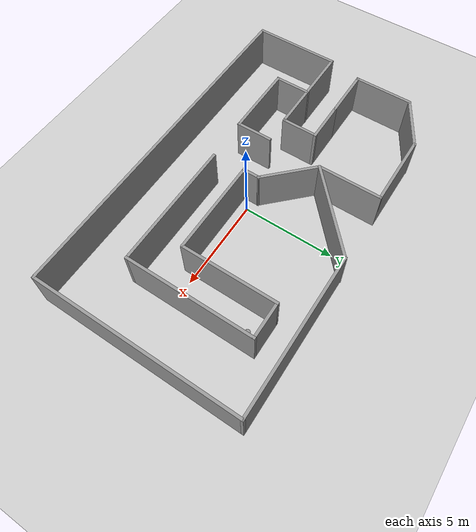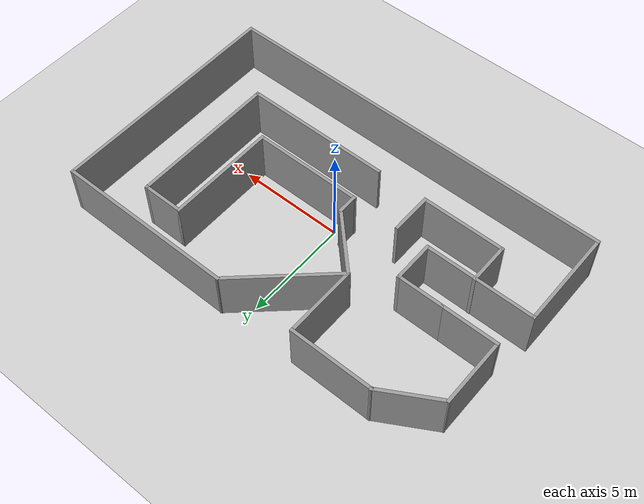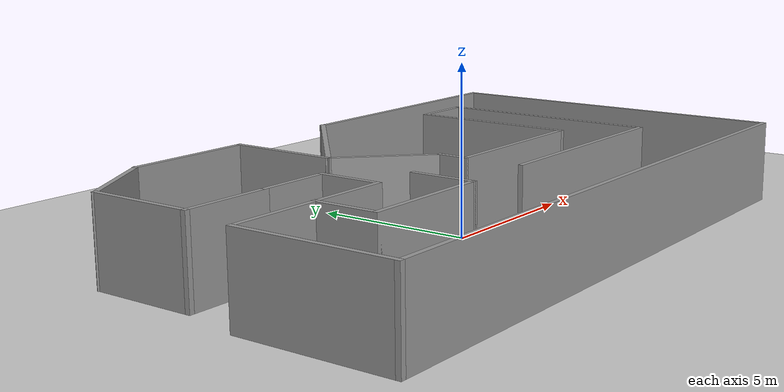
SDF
<sdf version="1.6">
 <world name="default">
  <light name="sun" type="directional">
   <pose>0 0 10 0 -0 0</pose>
   <diffuse>0.8 0.8 0.8 1</diffuse>
   <specular>0.2 0.2 0.2 1</specular>
   <attenuation>
    <range>1000</range>
    <constant>0.9</constant>
    <linear>0.01</linear>
    <quadratic>0.001</quadratic>
   </attenuation>
   <direction>-0.5 0.1 -0.9</direction>
  </light>
  <model name="ground_plane">
   <static>1</static>
   <link name="link">
    <collision name="collision">
     <geometry><plane><normal>0 0 1</normal><size>100 100</size></plane></geometry>
     <surface>
      <contact><collide_bitmask>65535</collide_bitmask></contact>
      <friction><ode><mu>100</mu><mu2>50</mu2></ode></friction>
     </surface>
    </collision>
    <visual name="visual">
     <cast_shadows>0</cast_shadows>
     <geometry><plane><normal>0 0 1</normal><size>100 100</size></plane></geometry>
     <material>
      <script><uri>file://media/materials/scripts/gazebo.material</uri><name>Gazebo/Grey</name></script>
     </material>
    </visual>
   </link>
  </model>
  <gravity>0 0 -9.8</gravity>
  <magnetic_field>6e-06 2.3e-05 -4.2e-05</magnetic_field>
  <atmosphere type="adiabatic"/>
  <physics name="default_physics" default="0" type="ode">
   <max_step_size>0.001</max_step_size>
   <real_time_factor>1</real_time_factor>
   <real_time_update_rate>1000</real_time_update_rate>
  </physics>
  <scene><ambient>0.4 0.4 0.4 1</ambient><background>0.7 0.7 0.7 1</background><shadows>1</shadows></scene>
  <audio><device>default</device></audio>
  <spherical_coordinates>
   <surface_model>EARTH_WGS84</surface_model>
   <latitude_deg>0</latitude_deg>
   <longitude_deg>0</longitude_deg>
   <elevation>0</elevation>
   <heading_deg>0</heading_deg>
  </spherical_coordinates>
  <model name="indoor_3">
   <pose>-0.079101 0.448428 0 0 -0 0</pose>
   <link name="Wall_0">
    <collision name="Wall_0_Collision">
     <geometry><box><size>19 0.15 2.5</size></box></geometry>
     <pose>0 0 1.25 0 -0 0</pose>
    </collision>
    <visual name="Wall_0_Visual">
     <pose>0 0 1.25 0 -0 0</pose>
     <geometry><box><size>19 0.15 2.5</size></box></geometry>
     <material>
      <script><uri>file://media/materials/scripts/gazebo.material</uri><name>Gazebo/Grey</name></script>
      <ambient>1 1 1 1</ambient>
     </material>
     <meta><layer>0</layer></meta>
    </visual>
    <pose>0 -5.56549 0 0 -0 0</pose>
   </link>
   <link name="Wall_1">
    <collision name="Wall_1_Collision">
     <geometry><box><size>11.25 0.15 2.5</size></box></geometry>
     <pose>0 0 1.25 0 -0 0</pose>
    </collision>
    <visual name="Wall_1_Visual">
     <pose>0 0 1.25 0 -0 0</pose>
     <geometry><box><size>11.25 0.15 2.5</size></box></geometry>
     <material>
      <script><uri>file://media/materials/scripts/gazebo.material</uri><name>Gazebo/Grey</name></script>
      <ambient>1 1 1 1</ambient>
     </material>
     <meta><layer>0</layer></meta>
    </visual>
    <pose>9.425 -0.015486 0 0 -0 1.5708</pose>
   </link>
   <link name="Wall_10">
    <collision name="Wall_10_Collision">
     <geometry><box><size>2.75 0.15 2.5</size></box></geometry>
     <pose>0 0 1.25 0 -0 0</pose>
    </collision>
    <visual name="Wall_10_Visual">
     <pose>0 0 1.25 0 -0 0</pose>
     <geometry><box><size>2.75 0.15 2.5</size></box></geometry>
     <material>
      <script><uri>file://media/materials/scripts/gazebo.material</uri><name>Gazebo/Grey</name></script>
      <ambient>1 1 1 1</ambient>
     </material>
     <meta><layer>0</layer></meta>
    </visual>
    <pose>-7.725 0.884514 0 0 -0 3.14159</pose>
   </link>
   <link name="Wall_11">
    <collision name="Wall_11_Collision">
     <geometry><box><size>3.25 0.15 2.5</size></box></geometry>
     <pose>0 0 1.25 0 -0 0</pose>
    </collision>
    <visual name="Wall_11_Visual">
     <pose>0 0 1.25 0 -0 0</pose>
     <geometry><box><size>3.25 0.15 2.5</size></box></geometry>
     <material>
      <script><uri>file://media/materials/scripts/gazebo.material</uri><name>Gazebo/Grey</name></script>
      <ambient>1 1 1 1</ambient>
     </material>
     <meta><layer>0</layer></meta>
    </visual>
    <pose>-9.025 2.43451 0 0 -0 1.5708</pose>
   </link>
   <link name="Wall_12">
    <collision name="Wall_12_Collision">
     <geometry><box><size>3 0.15 2.5</size></box></geometry>
     <pose>0 0 1.25 0 -0 0</pose>
    </collision>
    <visual name="Wall_12_Visual">
     <pose>0 0 1.25 0 -0 0</pose>
     <geometry><box><size>3 0.15 2.5</size></box></geometry>
     <material>
      <script><uri>file://media/materials/scripts/gazebo.material</uri><name>Gazebo/Grey</name></script>
      <ambient>1 1 1 1</ambient>
     </material>
     <meta><layer>0</layer></meta>
    </visual>
    <pose>-7.79091 4.69701 0 0 -0 0.523599</pose>
   </link>
   <link name="Wall_13">
    <collision name="Wall_13_Collision">
     <geometry><box><size>4 0.15 2.5</size></box></geometry>
     <pose>0 0 1.25 0 -0 0</pose>
    </collision>
    <visual name="Wall_13_Visual">
     <pose>0 0 1.25 0 -0 0</pose>
     <geometry><box><size>4 0.15 2.5</size></box></geometry>
     <material>
      <script><uri>file://media/materials/scripts/gazebo.material</uri><name>Gazebo/Grey</name></script>
      <ambient>1 1 1 1</ambient>
     </material>
     <meta><layer>0</layer></meta>
    </visual>
    <pose>-4.63183 5.40951 0 0 -0 0</pose>
   </link>
   <link name="Wall_14">
    <collision name="Wall_14_Collision">
     <geometry><box><size>3.5 0.15 2.5</size></box></geometry>
     <pose>0 0 1.25 0 -0 0</pose>
    </collision>
    <visual name="Wall_14_Visual">
     <pose>0 0 1.25 0 -0 0</pose>
     <geometry><box><size>3.5 0.15 2.5</size></box></geometry>
     <material>
      <script><uri>file://media/materials/scripts/gazebo.material</uri><name>Gazebo/Grey</name></script>
      <ambient>1 1 1 1</ambient>
     </material>
     <meta><layer>0</layer></meta>
    </visual>
    <pose>-2.70683 3.73451 0 0 -0 -1.5708</pose>
   </link>
   <link name="Wall_15">
    <collision name="Wall_15_Collision">
     <geometry><box><size>3.25 0.15 2.5</size></box></geometry>
     <pose>0 0 1.25 0 -0 0</pose>
    </collision>
    <visual name="Wall_15_Visual">
     <pose>0 0 1.25 0 -0 0</pose>
     <geometry><box><size>3.25 0.15 2.5</size></box></geometry>
     <material>
      <script><uri>file://media/materials/scripts/gazebo.material</uri><name>Gazebo/Grey</name></script>
      <ambient>1 1 1 1</ambient>
     </material>
     <meta><layer>0</layer></meta>
    </visual>
    <pose>-1.61081 0.963499 0 0 -0 -0.785398</pose>
   </link>
   <link name="Wall_16">
    <collision name="Wall_16_Collision">
     <geometry><box><size>1 0.15 2.5</size></box></geometry>
     <pose>0 0 1.25 0 -0 0</pose>
    </collision>
    <visual name="Wall_16_Visual">
     <pose>0 0 1.25 0 -0 0</pose>
     <geometry><box><size>1 0.15 2.5</size></box></geometry>
     <material>
      <script><uri>file://media/materials/scripts/gazebo.material</uri><name>Gazebo/Grey</name></script>
      <ambient>1 1 1 1</ambient>
     </material>
     <meta><layer>0</layer></meta>
    </visual>
    <pose>-0.514796 -0.557517 0 0 -0 -1.5708</pose>
   </link>
   <link name="Wall_17">
    <collision name="Wall_17_Collision">
     <geometry><box><size>5.25 0.15 2.5</size></box></geometry>
     <pose>0 0 1.25 0 -0 0</pose>
    </collision>
    <visual name="Wall_17_Visual">
     <pose>0 0 1.25 0 -0 0</pose>
     <geometry><box><size>5.25 0.15 2.5</size></box></geometry>
     <material>
      <script><uri>file://media/materials/scripts/gazebo.material</uri><name>Gazebo/Grey</name></script>
      <ambient>1 1 1 1</ambient>
     </material>
     <meta><layer>0</layer></meta>
    </visual>
    <pose>2.0352 -0.982517 0 0 -0 0</pose>
   </link>
   <link name="Wall_18">
    <collision name="Wall_18_Collision">
     <geometry><box><size>5.25 0.15 2.5</size></box></geometry>
     <pose>0 0 1.25 0 -0 0</pose>
    </collision>
    <visual name="Wall_18_Visual">
     <pose>0 0 1.25 0 -0 0</pose>
     <geometry><box><size>5.25 0.15 2.5</size></box></geometry>
     <material>
      <script><uri>file://media/materials/scripts/gazebo.material</uri><name>Gazebo/Grey</name></script>
      <ambient>1 1 1 1</ambient>
     </material>
     <meta><layer>0</layer></meta>
    </visual>
    <pose>4.5852 1.56748 0 0 -0 1.5708</pose>
   </link>
   <link name="Wall_20">
    <collision name="Wall_20_Collision">
     <geometry><box><size>8.5 0.15 2.5</size></box></geometry>
     <pose>0 0 1.25 0 -0 0</pose>
    </collision>
    <visual name="Wall_20_Visual">
     <pose>0 0 1.25 0 -0 0</pose>
     <geometry><box><size>8.5 0.15 2.5</size></box></geometry>
     <material>
      <script><uri>file://media/materials/scripts/gazebo.material</uri><name>Gazebo/Grey</name></script>
      <ambient>1 1 1 1</ambient>
     </material>
     <meta><layer>0</layer></meta>
    </visual>
    <pose>5.25 5.53451 0 0 -0 3.14159</pose>
   </link>
   <link name="Wall_21">
    <collision name="Wall_21_Collision">
     <geometry><box><size>5.28594 0.15 2.5</size></box></geometry>
     <pose>0 0 1.25 0 -0 0</pose>
    </collision>
    <visual name="Wall_21_Visual">
     <pose>0 0 1.25 0 -0 0</pose>
     <geometry><box><size>5.28594 0.15 2.5</size></box></geometry>
     <material>
      <script><uri>file://media/materials/scripts/gazebo.material</uri><name>Gazebo/Grey</name></script>
      <ambient>1 1 1 1</ambient>
     </material>
     <meta><layer>0</layer></meta>
    </visual>
    <pose>-0.815914 3.79701 0 0 -0 -2.39845</pose>
   </link>
   <link name="Wall_23">
    <collision name="Wall_23_Collision">
     <geometry><box><size>2 0.15 2.5</size></box></geometry>
     <pose>0 0 1.25 0 -0 0</pose>
    </collision>
    <visual name="Wall_23_Visual">
     <pose>0 0 1.25 0 -0 0</pose>
     <geometry><box><size>2 0.15 2.5</size></box></geometry>
     <material>
      <script><uri>file://media/materials/scripts/gazebo.material</uri><name>Gazebo/Grey</name></script>
      <ambient>1 1 1 1</ambient>
     </material>
     <meta><layer>0</layer></meta>
    </visual>
    <pose>-6.67188 -1.87136 0 0 -0 -1.5708</pose>
   </link>
   <link name="Wall_24">
    <collision name="Wall_24_Collision">
     <geometry><box><size>4 0.15 2.5</size></box></geometry>
     <pose>0 0 1.25 0 -0 0</pose>
    </collision>
    <visual name="Wall_24_Visual">
     <pose>0 0 1.25 0 -0 0</pose>
     <geometry><box><size>4 0.15 2.5</size></box></geometry>
     <material>
      <script><uri>file://media/materials/scripts/gazebo.material</uri><name>Gazebo/Grey</name></script>
      <ambient>1 1 1 1</ambient>
     </material>
     <meta><layer>0</layer></meta>
    </visual>
    <pose>-4.74688 -2.79636 0 0 -0 0</pose>
   </link>
   <link name="Wall_25">
    <collision name="Wall_25_Collision">
     <geometry><box><size>2 0.15 2.5</size></box></geometry>
     <pose>0 0 1.25 0 -0 0</pose>
    </collision>
    <visual name="Wall_25_Visual">
     <pose>0 0 1.25 0 -0 0</pose>
     <geometry><box><size>2 0.15 2.5</size></box></geometry>
     <material>
      <script><uri>file://media/materials/scripts/gazebo.material</uri><name>Gazebo/Grey</name></script>
      <ambient>1 1 1 1</ambient>
     </material>
     <meta><layer>0</layer></meta>
    </visual>
    <pose>-2.82188 -1.87136 0 0 -0 1.5708</pose>
   </link>
   <link name="Wall_28">
    <collision name="Wall_28_Collision">
     <geometry><box><size>2 0.15 2.5</size></box></geometry>
     <pose>0 0 1.25 0 -0 0</pose>
    </collision>
    <visual name="Wall_28_Visual">
     <pose>0 0 1.25 0 -0 0</pose>
     <geometry><box><size>2 0.15 2.5</size></box></geometry>
     <material>
      <script><uri>file://media/materials/scripts/gazebo.material</uri><name>Gazebo/Grey</name></script>
      <ambient>1 1 1 1</ambient>
     </material>
     <meta><layer>0</layer></meta>
    </visual>
    <pose>5.5102 4.11748 0 0 -0 0</pose>
   </link>
   <link name="Wall_29">
    <collision name="Wall_29_Collision">
     <geometry><box><size>7 0.15 2.5</size></box></geometry>
     <pose>0 0 1.25 0 -0 0</pose>
    </collision>
    <visual name="Wall_29_Visual">
     <pose>0 0 1.25 0 -0 0</pose>
     <geometry><box><size>7 0.15 2.5</size></box></geometry>
     <material>
      <script><uri>file://media/materials/scripts/gazebo.material</uri><name>Gazebo/Grey</name></script>
      <ambient>1 1 1 1</ambient>
     </material>
     <meta><layer>0</layer></meta>
    </visual>
    <pose>6.4352 0.692483 0 0 -0 -1.5708</pose>
   </link>
   <link name="Wall_30">
    <collision name="Wall_30_Collision">
     <geometry><box><size>7 0.15 2.5</size></box></geometry>
     <pose>0 0 1.25 0 -0 0</pose>
    </collision>
    <visual name="Wall_30_Visual">
     <pose>0 0 1.25 0 -0 0</pose>
     <geometry><box><size>7 0.15 2.5</size></box></geometry>
     <material>
      <script><uri>file://media/materials/scripts/gazebo.material</uri><name>Gazebo/Grey</name></script>
      <ambient>1 1 1 1</ambient>
     </material>
     <meta><layer>0</layer></meta>
    </visual>
    <pose>3.0102 -2.73252 0 0 -0 3.14159</pose>
   </link>
   <link name="Wall_6">
    <collision name="Wall_6_Collision">
     <geometry><box><size>4.75 0.15 2.5</size></box></geometry>
     <pose>0 0 1.25 0 -0 0</pose>
    </collision>
    <visual name="Wall_6_Visual">
     <pose>0 0 1.25 0 -0 0</pose>
     <geometry><box><size>4.75 0.15 2.5</size></box></geometry>
     <material>
      <script><uri>file://media/materials/scripts/gazebo.material</uri><name>Gazebo/Grey</name></script>
      <ambient>1 1 1 1</ambient>
     </material>
     <meta><layer>0</layer></meta>
    </visual>
    <pose>-9.425 -3.26549 0 0 -0 1.5708</pose>
   </link>
   <link name="Wall_7">
    <collision name="Wall_7_Collision">
     <geometry><box><size>5.25 0.15 2.5</size></box></geometry>
     <pose>0 0 1.25 0 -0 0</pose>
    </collision>
    <visual name="Wall_7_Visual">
     <pose>0 0 1.25 0 -0 0</pose>
     <geometry><box><size>5.25 0.15 2.5</size></box></geometry>
     <material>
      <script><uri>file://media/materials/scripts/gazebo.material</uri><name>Gazebo/Grey</name></script>
      <ambient>1 1 1 1</ambient>
     </material>
     <meta><layer>0</layer></meta>
    </visual>
    <pose>-6.875 -0.965486 0 0 -0 0</pose>
   </link>
   <link name="Wall_8">
    <collision name="Wall_8_Collision">
     <geometry><box><size>2 0.15 2.5</size></box></geometry>
     <pose>0 0 1.25 0 -0 0</pose>
    </collision>
    <visual name="Wall_8_Visual">
     <pose>0 0 1.25 0 -0 0</pose>
     <geometry><box><size>2 0.15 2.5</size></box></geometry>
     <material>
      <script><uri>file://media/materials/scripts/gazebo.material</uri><name>Gazebo/Grey</name></script>
      <ambient>1 1 1 1</ambient>
     </material>
     <meta><layer>0</layer></meta>
    </visual>
    <pose>-4.325 -0.040486 0 0 -0 1.5708</pose>
   </link>
   <link name="Wall_9">
    <collision name="Wall_9_Collision">
     <geometry><box><size>2.25 0.15 2.5</size></box></geometry>
     <pose>0 0 1.25 0 -0 0</pose>
    </collision>
    <visual name="Wall_9_Visual">
     <pose>0 0 1.25 0 -0 0</pose>
     <geometry><box><size>2.25 0.15 2.5</size></box></geometry>
     <material>
      <script><uri>file://media/materials/scripts/gazebo.material</uri><name>Gazebo/Grey</name></script>
      <ambient>1 1 1 1</ambient>
     </material>
     <meta><layer>0</layer></meta>
    </visual>
    <pose>-5.375 0.884514 0 0 -0 3.14159</pose>
   </link>
   <static>1</static>
  </model>
  <model name="Sphere_radius_15cm">
   <link name="link">
    <inertial>
     <mass>1</mass>
     <inertia><ixx>0.1</ixx><ixy>0</ixy><ixz>0</ixz><iyy>0.1</iyy><iyz>0</iyz><izz>0.1</izz></inertia>
    </inertial>
    <visual name="visual">
     <geometry><sphere><radius>0.15</radius></sphere></geometry>
     <material>
      <script><name>Gazebo/Grey</name><uri>file://media/materials/scripts/gazebo.material</uri></script>
      <shader type="vertex"><normal_map>__default__</normal_map></shader>
      <ambient>0.3 0.3 0.3 1</ambient>
      <diffuse>0.7 0.7 0.7 1</diffuse>
      <specular>0.01 0.01 0.01 1</specular>
      <emissive>0 0 0 1</emissive>
     </material>
    </visual>
    <collision name="collision">
     <geometry><sphere><radius>0.15</radius></sphere></geometry>
     <surface>
      <friction>
       <ode><mu>1</mu><mu2>1</mu2><fdir1>0 0 0</fdir1><slip1>0</slip1><slip2>0</slip2></ode>
       <torsional>
        <coefficient>1</coefficient>
        <patch_radius>0</patch_radius>
        <surface_radius>0</surface_radius>
        <use_patch_radius>1</use_patch_radius>
        <ode><slip>0</slip></ode>
       </torsional>
      </friction>
      <bounce><restitution_coefficient>0</restitution_coefficient><threshold>1e+06</threshold></bounce>
      <contact>
       <collide_without_contact>0</collide_without_contact>
       <collide_without_contact_bitmask>1</collide_without_contact_bitmask>
       <collide_bitmask>1</collide_bitmask>
       <ode>
        <soft_cfm>0</soft_cfm>
        <soft_erp>0.2</soft_erp>
        <kp>1e+13</kp>
        <kd>1</kd>
        <max_vel>0.01</max_vel>
        <min_depth>0</min_depth>
       </ode>
       <bullet>
        <split_impulse>1</split_impulse>
        <split_impulse_penetration_threshold>-0.01</split_impulse_penetration_threshold>
        <soft_cfm>0</soft_cfm>
        <soft_erp>0.2</soft_erp>
        <kp>1e+13</kp>
        <kd>1</kd>
       </bullet>
      </contact>
     </surface>
    </collision>
   </link>
   <static>0</static>
   <pose>5.60233 3.72999 0.15 0 -0 0</pose>
  </model>
 </world>
</sdf>
